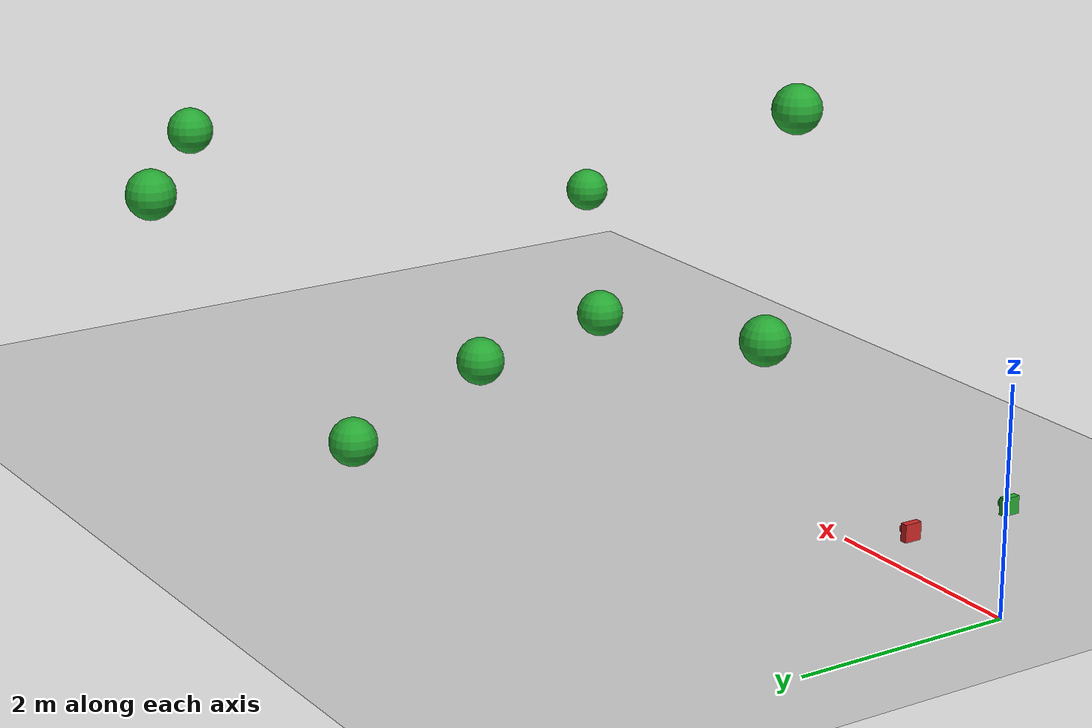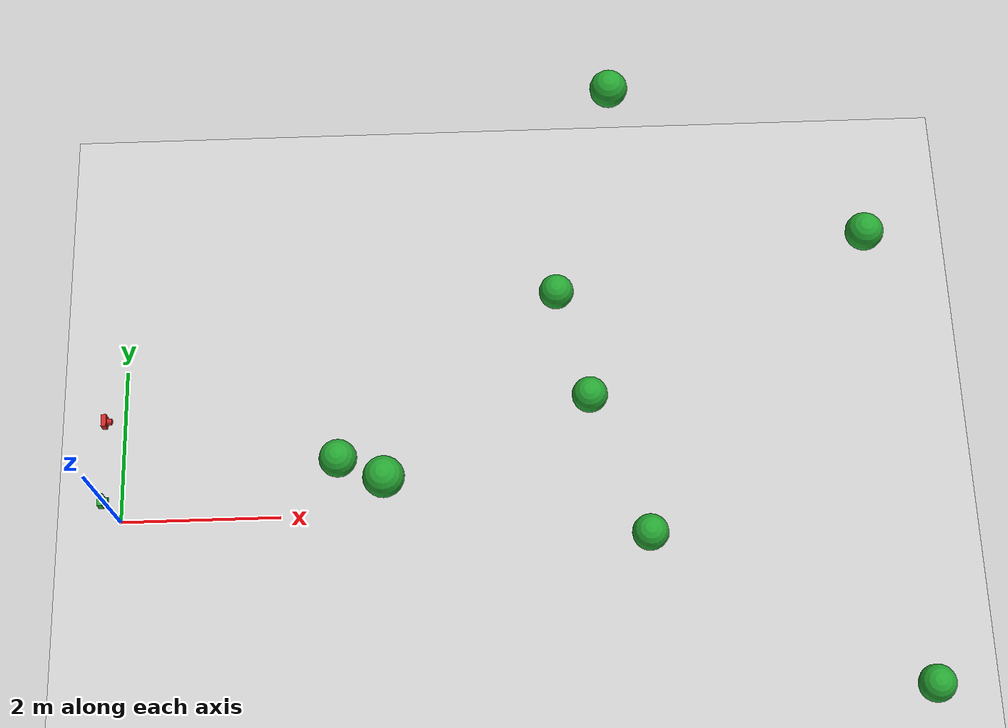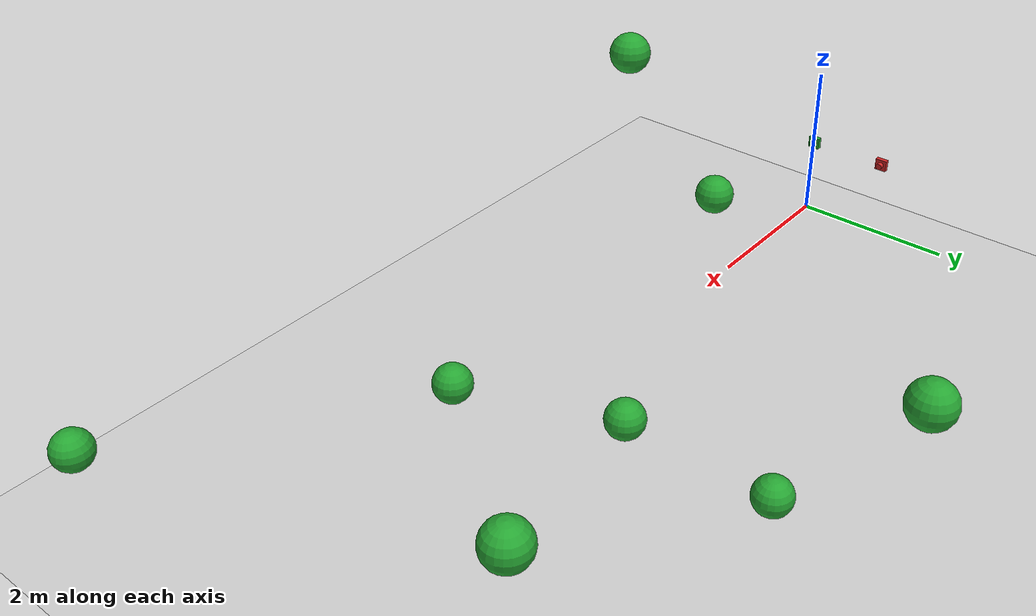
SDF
<sdf version="1.7">
 <world name="default">
  <plugin name="gazebo_ros_state" filename="libgazebo_ros_state.so">
   <ros><namespace>/simulation</namespace><argument>model_states:=model_states_demo</argument></ros>
   <update_rate>1.0</update_rate>
  </plugin>
  <light name="sun" type="directional">
   <pose>0 0 10 0 -0 0</pose>
   <diffuse>0.8 0.8 0.8 1</diffuse>
   <specular>0.2 0.2 0.2 1</specular>
   <attenuation>
    <range>1000</range>
    <constant>0.9</constant>
    <linear>0.01</linear>
    <quadratic>0.001</quadratic>
   </attenuation>
   <direction>-0.5 0.1 -0.9</direction>
   <spot><inner_angle>0</inner_angle><outer_angle>0</outer_angle><falloff>0</falloff></spot>
  </light>
  <model name="ground_plane">
   <static>1</static>
   <link name="link">
    <collision name="collision">
     <geometry><plane><normal>0 0 1</normal><size>100 100</size></plane></geometry>
     <surface>
      <contact><collide_bitmask>65535</collide_bitmask></contact>
      <friction><ode><mu>100</mu><mu2>50</mu2></ode></friction>
     </surface>
    </collision>
    <visual name="visual">
     <cast_shadows>0</cast_shadows>
     <geometry><plane><normal>0 0 1</normal><size>100 100</size></plane></geometry>
     <material>
      <script><uri>file://media/materials/scripts/gazebo.material</uri><name>Gazebo/Grey</name></script>
     </material>
    </visual>
   </link>
  </model>
  <gravity>0 0 0</gravity>
  <magnetic_field>6e-06 2.3e-05 -4.2e-05</magnetic_field>
  <atmosphere type="adiabatic"/>
  <physics type="ode">
   <max_step_size>0.001</max_step_size>
   <real_time_factor>1</real_time_factor>
   <real_time_update_rate>1000</real_time_update_rate>
   <ode>
    <solver><type>quick</type><iters>0</iters><sor>1.4</sor></solver>
    <constraints>
     <cfm>0</cfm>
     <erp>1</erp>
     <contact_max_correcting_vel>0</contact_max_correcting_vel>
     <contact_surface_layer>0</contact_surface_layer>
    </constraints>
   </ode>
  </physics>
  <scene><ambient>0.4 0.4 0.4 1</ambient><background>0.7 0.7 0.7 1</background><shadows>1</shadows></scene>
  <audio><device>default</device></audio>
  <spherical_coordinates>
   <surface_model>EARTH_WGS84</surface_model>
   <latitude_deg>0</latitude_deg>
   <longitude_deg>0</longitude_deg>
   <elevation>0</elevation>
   <heading_deg>0</heading_deg>
  </spherical_coordinates>
  <model name="my_bot">
   <joint name="cam0_joint" type="fixed">
    <pose relative_to="__model__">0 0 1 0 -0 0</pose>
    <parent>world</parent>
    <child>cam0_link</child>
   </joint>
   <link name="cam0_link">
    <pose relative_to="cam0_joint">0 0 0 0 -0 0</pose>
    <inertial>
     <mass>0.1</mass>
     <inertia>
      <ixx>0.000375</ixx>
      <ixy>0</ixy>
      <ixz>0</ixz>
      <iyy>0.0003075</iyy>
      <iyz>0</iyz>
      <izz>0.0003075</izz>
     </inertia>
    </inertial>
    <collision name="cam0_link_collision"><geometry><box><size>0.12 0.15 0.15</size></box></geometry></collision>
    <visual name="cam0_link_visual">
     <pose>-0.03 0 0 0 -0 0</pose>
     <geometry><box><size>0.06 0.15 0.15</size></box></geometry>
     <material>
      <script><name>Gazebo/Green</name><uri>file://media/materials/scripts/gazebo.material</uri></script>
     </material>
    </visual>
    <visual name="cam0_link_visual_1">
     <pose>0.03 0 0 3.14159 1.57079 3.14159</pose>
     <geometry><cylinder><length>0.06</length><radius>0.04</radius></cylinder></geometry>
     <material>
      <script><name>Gazebo/Green</name><uri>file://media/materials/scripts/gazebo.material</uri></script>
     </material>
    </visual>
    <sensor name="cam0" type="camera">
     <update_rate>30</update_rate>
     <visualize>1</visualize>
     <camera name="cam0">
      <horizontal_fov>1.39626</horizontal_fov>
      <image><width>1280</width><height>720</height><format>BGR8</format></image>
      <clip><near>0.02</near><far>300</far></clip>
     </camera>
     <plugin name="cam0_controller" filename="libgazebo_ros_camera.so">
      <frame_name>cam0_link_optical</frame_name>
      <min_depth>0.1</min_depth>
      <max_depth>500</max_depth>
     </plugin>
    </sensor>
   </link>
   <joint name="cam1_joint" type="fixed">
    <pose relative_to="__model__">0 1 1 0 -0 0</pose>
    <parent>world</parent>
    <child>cam1_link</child>
   </joint>
   <link name="cam1_link">
    <pose relative_to="cam1_joint">0 0 0 0 -0 0</pose>
    <inertial>
     <mass>0.1</mass>
     <inertia>
      <ixx>0.000375</ixx>
      <ixy>0</ixy>
      <ixz>0</ixz>
      <iyy>0.0003075</iyy>
      <iyz>0</iyz>
      <izz>0.0003075</izz>
     </inertia>
    </inertial>
    <collision name="cam1_link_collision"><geometry><box><size>0.12 0.15 0.15</size></box></geometry></collision>
    <visual name="cam1_link_visual">
     <pose>-0.03 0 0 0 -0 0</pose>
     <geometry><box><size>0.06 0.15 0.15</size></box></geometry>
     <material>
      <script><name>Gazebo/Red</name><uri>file://media/materials/scripts/gazebo.material</uri></script>
     </material>
    </visual>
    <visual name="cam1_link_visual_1">
     <pose>0.03 0 0 3.14159 1.57079 3.14159</pose>
     <geometry><cylinder><length>0.06</length><radius>0.04</radius></cylinder></geometry>
     <material>
      <script><name>Gazebo/Red</name><uri>file://media/materials/scripts/gazebo.material</uri></script>
     </material>
    </visual>
    <sensor name="cam1" type="camera">
     <update_rate>30</update_rate>
     <visualize>1</visualize>
     <camera name="cam1">
      <horizontal_fov>1.39626</horizontal_fov>
      <image><width>1280</width><height>720</height><format>BGR8</format></image>
      <clip><near>0.02</near><far>300</far></clip>
     </camera>
     <plugin name="cam1_controller" filename="libgazebo_ros_camera.so">
      <frame_name>cam1_link_optical</frame_name>
      <min_depth>0.1</min_depth>
      <max_depth>500</max_depth>
     </plugin>
    </sensor>
   </link>
  </model>
  <model name="ball">
   <link name="link_0">
    <inertial>
     <mass>95.5621</mass>
     <inertia><ixx>1.93697</ixx><ixy>0</ixy><ixz>0</ixz><iyy>1.93697</iyy><iyz>0</iyz><izz>1.93697</izz></inertia>
    </inertial>
    <gravity>0</gravity>
    <visual name="visual">
     <geometry><sphere><radius>0.225107</radius></sphere></geometry>
     <material>
      <lighting>1</lighting>
      <script><uri>file://media/materials/scripts/gazebo.material</uri><name>Gazebo/Green</name></script>
      <shader type="pixel"><normal_map>__default__</normal_map></shader>
      <ambient>0 1 0 1</ambient>
      <diffuse>0 1 0 1</diffuse>
      <specular>0 1 0 1</specular>
      <emissive>0 1 0 1</emissive>
     </material>
    </visual>
    <collision name="collision">
     <geometry><sphere><radius>0.225107</radius></sphere></geometry>
     <surface>
      <friction>
       <ode><mu>1</mu><mu2>1</mu2><fdir1>0 0 0</fdir1><slip1>0</slip1><slip2>0</slip2></ode>
       <torsional>
        <coefficient>1</coefficient>
        <patch_radius>0</patch_radius>
        <surface_radius>0</surface_radius>
        <use_patch_radius>1</use_patch_radius>
        <ode><slip>0</slip></ode>
       </torsional>
      </friction>
      <bounce><restitution_coefficient>0</restitution_coefficient><threshold>1e+06</threshold></bounce>
      <contact>
       <collide_without_contact>0</collide_without_contact>
       <collide_without_contact_bitmask>1</collide_without_contact_bitmask>
       <collide_bitmask>1</collide_bitmask>
       <ode>
        <soft_cfm>0</soft_cfm>
        <soft_erp>0.2</soft_erp>
        <kp>1e+13</kp>
        <kd>1</kd>
        <max_vel>0.01</max_vel>
        <min_depth>0</min_depth>
       </ode>
       <bullet>
        <split_impulse>1</split_impulse>
        <split_impulse_penetration_threshold>-0.01</split_impulse_penetration_threshold>
        <soft_cfm>0</soft_cfm>
        <soft_erp>0.2</soft_erp>
        <kp>1e+13</kp>
        <kd>1</kd>
       </bullet>
      </contact>
     </surface>
    </collision>
   </link>
   <static>0</static>
   <pose>3.53739 -0.540855 3.38366 0 -0 0</pose>
  </model>
  <model name="ball_0">
   <link name="link_0">
    <inertial>
     <mass>95.5621</mass>
     <inertia><ixx>1.93697</ixx><ixy>0</ixy><ixz>0</ixz><iyy>1.93697</iyy><iyz>0</iyz><izz>1.93697</izz></inertia>
    </inertial>
    <gravity>0</gravity>
    <visual name="visual">
     <geometry><sphere><radius>0.225107</radius></sphere></geometry>
     <material>
      <lighting>1</lighting>
      <script><uri>file://media/materials/scripts/gazebo.material</uri><name>Gazebo/Green</name></script>
      <shader type="pixel"><normal_map>__default__</normal_map></shader>
      <ambient>0 1 0 1</ambient>
      <diffuse>0 1 0 1</diffuse>
      <specular>0 1 0 1</specular>
      <emissive>0 1 0 1</emissive>
     </material>
    </visual>
    <collision name="collision">
     <geometry><sphere><radius>0.225107</radius></sphere></geometry>
     <surface>
      <friction>
       <ode><mu>1</mu><mu2>1</mu2><fdir1>0 0 0</fdir1><slip1>0</slip1><slip2>0</slip2></ode>
       <torsional>
        <coefficient>1</coefficient>
        <patch_radius>0</patch_radius>
        <surface_radius>0</surface_radius>
        <use_patch_radius>1</use_patch_radius>
        <ode><slip>0</slip></ode>
       </torsional>
      </friction>
      <bounce><restitution_coefficient>0</restitution_coefficient><threshold>1e+06</threshold></bounce>
      <contact>
       <collide_without_contact>0</collide_without_contact>
       <collide_without_contact_bitmask>1</collide_without_contact_bitmask>
       <collide_bitmask>1</collide_bitmask>
       <ode>
        <soft_cfm>0</soft_cfm>
        <soft_erp>0.2</soft_erp>
        <kp>1e+13</kp>
        <kd>1</kd>
        <max_vel>0.01</max_vel>
        <min_depth>0</min_depth>
       </ode>
       <bullet>
        <split_impulse>1</split_impulse>
        <split_impulse_penetration_threshold>-0.01</split_impulse_penetration_threshold>
        <soft_cfm>0</soft_cfm>
        <soft_erp>0.2</soft_erp>
        <kp>1e+13</kp>
        <kd>1</kd>
       </bullet>
      </contact>
     </surface>
    </collision>
   </link>
   <static>0</static>
   <pose>6.21283 4.40066 2.73195 0 -0 0</pose>
  </model>
  <model name="ball_1">
   <link name="link_0">
    <inertial>
     <mass>95.5621</mass>
     <inertia><ixx>1.93697</ixx><ixy>0</ixy><ixz>0</ixz><iyy>1.93697</iyy><iyz>0</iyz><izz>1.93697</izz></inertia>
    </inertial>
    <gravity>0</gravity>
    <visual name="visual">
     <geometry><sphere><radius>0.225107</radius></sphere></geometry>
     <material>
      <lighting>1</lighting>
      <script><uri>file://media/materials/scripts/gazebo.material</uri><name>Gazebo/Green</name></script>
      <shader type="pixel"><normal_map>__default__</normal_map></shader>
      <ambient>0 1 0 1</ambient>
      <diffuse>0 1 0 1</diffuse>
      <specular>0 1 0 1</specular>
      <emissive>0 1 0 1</emissive>
     </material>
    </visual>
    <collision name="collision">
     <geometry><sphere><radius>0.225107</radius></sphere></geometry>
     <surface>
      <friction>
       <ode><mu>1</mu><mu2>1</mu2><fdir1>0 0 0</fdir1><slip1>0</slip1><slip2>0</slip2></ode>
       <torsional>
        <coefficient>1</coefficient>
        <patch_radius>0</patch_radius>
        <surface_radius>0</surface_radius>
        <use_patch_radius>1</use_patch_radius>
        <ode><slip>0</slip></ode>
       </torsional>
      </friction>
      <bounce><restitution_coefficient>0</restitution_coefficient><threshold>1e+06</threshold></bounce>
      <contact>
       <collide_without_contact>0</collide_without_contact>
       <collide_without_contact_bitmask>1</collide_without_contact_bitmask>
       <collide_bitmask>1</collide_bitmask>
       <ode>
        <soft_cfm>0</soft_cfm>
        <soft_erp>0.2</soft_erp>
        <kp>1e+13</kp>
        <kd>1</kd>
        <max_vel>0.01</max_vel>
        <min_depth>0</min_depth>
       </ode>
       <bullet>
        <split_impulse>1</split_impulse>
        <split_impulse_penetration_threshold>-0.01</split_impulse_penetration_threshold>
        <soft_cfm>0</soft_cfm>
        <soft_erp>0.2</soft_erp>
        <kp>1e+13</kp>
        <kd>1</kd>
       </bullet>
      </contact>
     </surface>
    </collision>
   </link>
   <static>0</static>
   <pose>5.57151 2.81501 0.327847 0 -0 0</pose>
  </model>
  <model name="ball_2">
   <link name="link_0">
    <inertial>
     <mass>95.5621</mass>
     <inertia><ixx>1.93697</ixx><ixy>0</ixy><ixz>0</ixz><iyy>1.93697</iyy><iyz>0</iyz><izz>1.93697</izz></inertia>
    </inertial>
    <gravity>0</gravity>
    <visual name="visual">
     <geometry><sphere><radius>0.225107</radius></sphere></geometry>
     <material>
      <lighting>1</lighting>
      <script><uri>file://media/materials/scripts/gazebo.material</uri><name>Gazebo/Green</name></script>
      <shader type="pixel"><normal_map>__default__</normal_map></shader>
      <ambient>0 1 0 1</ambient>
      <diffuse>0 1 0 1</diffuse>
      <specular>0 1 0 1</specular>
      <emissive>0 1 0 1</emissive>
     </material>
    </visual>
    <collision name="collision">
     <geometry><sphere><radius>0.225107</radius></sphere></geometry>
     <surface>
      <friction>
       <ode><mu>1</mu><mu2>1</mu2><fdir1>0 0 0</fdir1><slip1>0</slip1><slip2>0</slip2></ode>
       <torsional>
        <coefficient>1</coefficient>
        <patch_radius>0</patch_radius>
        <surface_radius>0</surface_radius>
        <use_patch_radius>1</use_patch_radius>
        <ode><slip>0</slip></ode>
       </torsional>
      </friction>
      <bounce><restitution_coefficient>0</restitution_coefficient><threshold>1e+06</threshold></bounce>
      <contact>
       <collide_without_contact>0</collide_without_contact>
       <collide_without_contact_bitmask>1</collide_without_contact_bitmask>
       <collide_bitmask>1</collide_bitmask>
       <ode>
        <soft_cfm>0</soft_cfm>
        <soft_erp>0.2</soft_erp>
        <kp>1e+13</kp>
        <kd>1</kd>
        <max_vel>0.01</max_vel>
        <min_depth>0</min_depth>
       </ode>
       <bullet>
        <split_impulse>1</split_impulse>
        <split_impulse_penetration_threshold>-0.01</split_impulse_penetration_threshold>
        <soft_cfm>0</soft_cfm>
        <soft_erp>0.2</soft_erp>
        <kp>1e+13</kp>
        <kd>1</kd>
       </bullet>
      </contact>
     </surface>
    </collision>
   </link>
   <static>0</static>
   <pose>6.5684 -0.526437 0.676293 0 -0 0</pose>
  </model>
  <model name="ball_3">
   <link name="link_0">
    <inertial>
     <mass>95.5621</mass>
     <inertia><ixx>1.93697</ixx><ixy>0</ixy><ixz>0</ixz><iyy>1.93697</iyy><iyz>0</iyz><izz>1.93697</izz></inertia>
    </inertial>
    <gravity>0</gravity>
    <visual name="visual">
     <geometry><sphere><radius>0.225107</radius></sphere></geometry>
     <material>
      <lighting>1</lighting>
      <script><uri>file://media/materials/scripts/gazebo.material</uri><name>Gazebo/Green</name></script>
      <shader type="pixel"><normal_map>__default__</normal_map></shader>
      <ambient>0 1 0 1</ambient>
      <diffuse>0 1 0 1</diffuse>
      <specular>0 1 0 1</specular>
      <emissive>0 1 0 1</emissive>
     </material>
    </visual>
    <collision name="collision">
     <geometry><sphere><radius>0.225107</radius></sphere></geometry>
     <surface>
      <friction>
       <ode><mu>1</mu><mu2>1</mu2><fdir1>0 0 0</fdir1><slip1>0</slip1><slip2>0</slip2></ode>
       <torsional>
        <coefficient>1</coefficient>
        <patch_radius>0</patch_radius>
        <surface_radius>0</surface_radius>
        <use_patch_radius>1</use_patch_radius>
        <ode><slip>0</slip></ode>
       </torsional>
      </friction>
      <bounce><restitution_coefficient>0</restitution_coefficient><threshold>1e+06</threshold></bounce>
      <contact>
       <collide_without_contact>0</collide_without_contact>
       <collide_without_contact_bitmask>1</collide_without_contact_bitmask>
       <collide_bitmask>1</collide_bitmask>
       <ode>
        <soft_cfm>0</soft_cfm>
        <soft_erp>0.2</soft_erp>
        <kp>1e+13</kp>
        <kd>1</kd>
        <max_vel>0.01</max_vel>
        <min_depth>0</min_depth>
       </ode>
       <bullet>
        <split_impulse>1</split_impulse>
        <split_impulse_penetration_threshold>-0.01</split_impulse_penetration_threshold>
        <soft_cfm>0</soft_cfm>
        <soft_erp>0.2</soft_erp>
        <kp>1e+13</kp>
        <kd>1</kd>
       </bullet>
      </contact>
     </surface>
    </collision>
   </link>
   <static>0</static>
   <pose>9.15548 2.58188 2.39341 0 -0 0</pose>
  </model>
  <model name="ball_4">
   <link name="link_0">
    <inertial>
     <mass>95.5621</mass>
     <inertia><ixx>1.93697</ixx><ixy>0</ixy><ixz>0</ixz><iyy>1.93697</iyy><iyz>0</iyz><izz>1.93697</izz></inertia>
    </inertial>
    <gravity>0</gravity>
    <visual name="visual">
     <geometry><sphere><radius>0.225107</radius></sphere></geometry>
     <material>
      <lighting>1</lighting>
      <script><uri>file://media/materials/scripts/gazebo.material</uri><name>Gazebo/Green</name></script>
      <shader type="pixel"><normal_map>__default__</normal_map></shader>
      <ambient>0 1 0 1</ambient>
      <diffuse>0 1 0 1</diffuse>
      <specular>0 1 0 1</specular>
      <emissive>0 1 0 1</emissive>
     </material>
    </visual>
    <collision name="collision">
     <geometry><sphere><radius>0.225107</radius></sphere></geometry>
     <surface>
      <friction>
       <ode><mu>1</mu><mu2>1</mu2><fdir1>0 0 0</fdir1><slip1>0</slip1><slip2>0</slip2></ode>
       <torsional>
        <coefficient>1</coefficient>
        <patch_radius>0</patch_radius>
        <surface_radius>0</surface_radius>
        <use_patch_radius>1</use_patch_radius>
        <ode><slip>0</slip></ode>
       </torsional>
      </friction>
      <bounce><restitution_coefficient>0</restitution_coefficient><threshold>1e+06</threshold></bounce>
      <contact>
       <collide_without_contact>0</collide_without_contact>
       <collide_without_contact_bitmask>1</collide_without_contact_bitmask>
       <collide_bitmask>1</collide_bitmask>
       <ode>
        <soft_cfm>0</soft_cfm>
        <soft_erp>0.2</soft_erp>
        <kp>1e+13</kp>
        <kd>1</kd>
        <max_vel>0.01</max_vel>
        <min_depth>0</min_depth>
       </ode>
       <bullet>
        <split_impulse>1</split_impulse>
        <split_impulse_penetration_threshold>-0.01</split_impulse_penetration_threshold>
        <soft_cfm>0</soft_cfm>
        <soft_erp>0.2</soft_erp>
        <kp>1e+13</kp>
        <kd>1</kd>
       </bullet>
      </contact>
     </surface>
    </collision>
   </link>
   <static>0</static>
   <pose>2.87213 0.25099 1.58904 0 -0 0</pose>
  </model>
  <model name="ball_5">
   <link name="link_0">
    <inertial>
     <mass>95.5621</mass>
     <inertia><ixx>1.93697</ixx><ixy>0</ixy><ixz>0</ixz><iyy>1.93697</iyy><iyz>0</iyz><izz>1.93697</izz></inertia>
    </inertial>
    <gravity>0</gravity>
    <visual name="visual">
     <geometry><sphere><radius>0.225107</radius></sphere></geometry>
     <material>
      <lighting>1</lighting>
      <script><uri>file://media/materials/scripts/gazebo.material</uri><name>Gazebo/Green</name></script>
      <shader type="pixel"><normal_map>__default__</normal_map></shader>
      <ambient>0 1 0 1</ambient>
      <diffuse>0 1 0 1</diffuse>
      <specular>0 1 0 1</specular>
      <emissive>0 1 0 1</emissive>
     </material>
    </visual>
    <collision name="collision">
     <geometry><sphere><radius>0.225107</radius></sphere></geometry>
     <surface>
      <friction>
       <ode><mu>1</mu><mu2>1</mu2><fdir1>0 0 0</fdir1><slip1>0</slip1><slip2>0</slip2></ode>
       <torsional>
        <coefficient>1</coefficient>
        <patch_radius>0</patch_radius>
        <surface_radius>0</surface_radius>
        <use_patch_radius>1</use_patch_radius>
        <ode><slip>0</slip></ode>
       </torsional>
      </friction>
      <bounce><restitution_coefficient>0</restitution_coefficient><threshold>1e+06</threshold></bounce>
      <contact>
       <collide_without_contact>0</collide_without_contact>
       <collide_without_contact_bitmask>1</collide_without_contact_bitmask>
       <collide_bitmask>1</collide_bitmask>
       <ode>
        <soft_cfm>0</soft_cfm>
        <soft_erp>0.2</soft_erp>
        <kp>1e+13</kp>
        <kd>1</kd>
        <max_vel>0.01</max_vel>
        <min_depth>0</min_depth>
       </ode>
       <bullet>
        <split_impulse>1</split_impulse>
        <split_impulse_penetration_threshold>-0.01</split_impulse_penetration_threshold>
        <soft_cfm>0</soft_cfm>
        <soft_erp>0.2</soft_erp>
        <kp>1e+13</kp>
        <kd>1</kd>
       </bullet>
      </contact>
     </surface>
    </collision>
   </link>
   <static>0</static>
   <pose>9.77513 -2.50075 0.864839 0 -0 0</pose>
  </model>
  <model name="ball_7">
   <link name="link_0">
    <inertial>
     <mass>95.5621</mass>
     <inertia><ixx>1.93697</ixx><ixy>0</ixy><ixz>0</ixz><iyy>1.93697</iyy><iyz>0</iyz><izz>1.93697</izz></inertia>
    </inertial>
    <gravity>0</gravity>
    <visual name="visual">
     <geometry><sphere><radius>0.225107</radius></sphere></geometry>
     <material>
      <lighting>1</lighting>
      <script><uri>file://media/materials/scripts/gazebo.material</uri><name>Gazebo/Green</name></script>
      <shader type="pixel"><normal_map>__default__</normal_map></shader>
      <ambient>0 1 0 1</ambient>
      <diffuse>0 1 0 1</diffuse>
      <specular>0 1 0 1</specular>
      <emissive>0 1 0 1</emissive>
     </material>
    </visual>
    <collision name="collision">
     <geometry><sphere><radius>0.225107</radius></sphere></geometry>
     <surface>
      <friction>
       <ode><mu>1</mu><mu2>1</mu2><fdir1>0 0 0</fdir1><slip1>0</slip1><slip2>0</slip2></ode>
       <torsional>
        <coefficient>1</coefficient>
        <patch_radius>0</patch_radius>
        <surface_radius>0</surface_radius>
        <use_patch_radius>1</use_patch_radius>
        <ode><slip>0</slip></ode>
       </torsional>
      </friction>
      <bounce><restitution_coefficient>0</restitution_coefficient><threshold>1e+06</threshold></bounce>
      <contact>
       <collide_without_contact>0</collide_without_contact>
       <collide_without_contact_bitmask>1</collide_without_contact_bitmask>
       <collide_bitmask>1</collide_bitmask>
       <ode>
        <soft_cfm>0</soft_cfm>
        <soft_erp>0.2</soft_erp>
        <kp>1e+13</kp>
        <kd>1</kd>
        <max_vel>0.01</max_vel>
        <min_depth>0</min_depth>
       </ode>
       <bullet>
        <split_impulse>1</split_impulse>
        <split_impulse_penetration_threshold>-0.01</split_impulse_penetration_threshold>
        <soft_cfm>0</soft_cfm>
        <soft_erp>0.2</soft_erp>
        <kp>1e+13</kp>
        <kd>1</kd>
       </bullet>
      </contact>
     </surface>
    </collision>
   </link>
   <static>0</static>
   <pose>5.91637 1.25404 0.703529 0 -0 0</pose>
  </model>
 </world>
</sdf>
